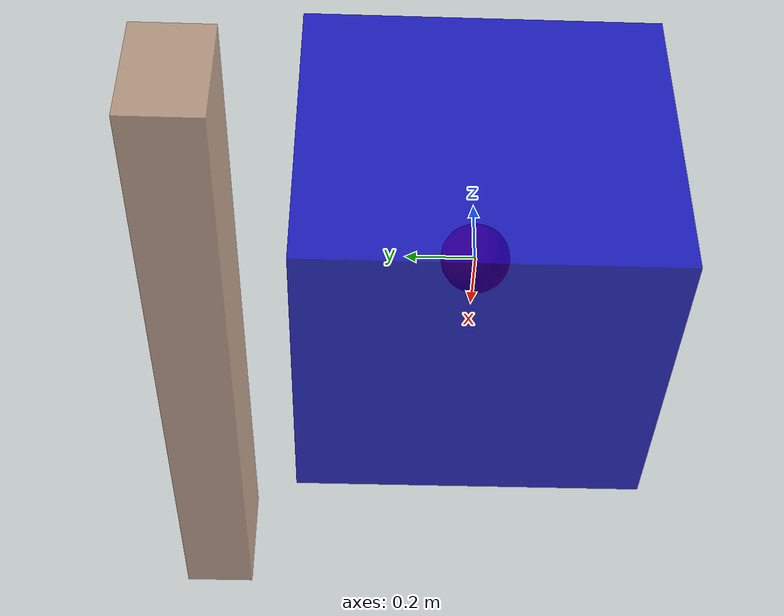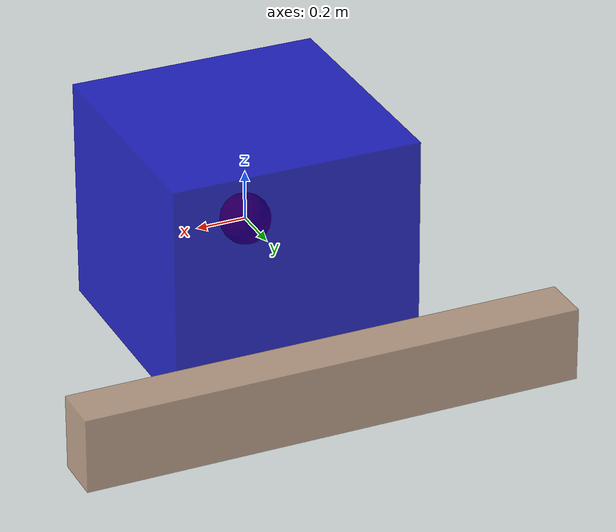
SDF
<?xml version="1.0"?>
<sdf version="1.7">
  <model name="simple_maze">
    <!-- Ghost body of negligible mass. -->
    <link name="sphere_ghost_body">
      <inertial>
        <mass>1.0e-6</mass>
        <inertia>
          <ixx>1.0e-6</ixx>
          <ixy>0</ixy>
          <ixz>0</ixz>
          <iyy>1.0e-6</iyy>
          <iyz>0</iyz>
          <izz>1.0e-6</izz>
        </inertia>
      </inertial>
    </link>
    <!-- The x slider will have an actuator with a corresponding input port
         in our MultibodyPlant model so that we can apply an external force.
    -->
    <joint name="sphere_x_slider" type="prismatic">
      <parent>world</parent>
      <child>sphere_ghost_body</child>
      <axis>
        <xyz>1 0 0</xyz>
      </axis>
    </joint>
    <!-- The y slider allows the box to freely move up and down. Thus, the
         box would free fall if it wasn't for the contact with the ground. -->
    <joint name="sphere_y_slider" type="prismatic">
      <parent>sphere_ghost_body</parent>
      <child>sphere_actuated</child>
      <axis>
        <xyz>0 1 0</xyz>
      </axis>
    </joint>
    <!-- The model for a solid box of uniform density. -->
    <link name="sphere_actuated">
      <inertial>
        <mass>1.0</mass>
        <inertia>
          <ixx>0.004</ixx>
          <ixy>0</ixy>
          <ixz>0</ixz>
          <iyy>0.004</iyy>
          <iyz>0</iyz>
          <izz>0.004</izz>
        </inertia>
      </inertial>
      <visual name="visual">
        <geometry>
          <sphere>
            <radius>0.1</radius>
          </sphere>
        </geometry>
        <material>
          <diffuse>1.0 0 0 1.0</diffuse>
        </material>
      </visual>
      <collision name="collision">
        <geometry>
          <sphere>
            <radius>0.1</radius>
          </sphere>
        </geometry>
        <surface>
          <friction>
            <ode>
              <mu>0.5</mu>
              <mu2>0.5</mu2>
            </ode>
          </friction>
        </surface>
        <drake:proximity_properties>
          <drake:mesh_resolution_hint>0.01</drake:mesh_resolution_hint>
          <drake:rigid_hydroelastic/>
        </drake:proximity_properties>
      </collision>
    </link>

    <!-- The model for a solid box of uniform density. -->
    <link name="box_ghost_body_x">
      <inertial>
        <mass>1.0e-6</mass>
        <inertia>
          <ixx>1.0e-6</ixx>
          <ixy>0</ixy>
          <ixz>0</ixz>
          <iyy>1.0e-6</iyy>
          <iyz>0</iyz>
          <izz>1.0e-6</izz>
        </inertia>
      </inertial>
    </link>

    <link name="box_ghost_body_y">
      <inertial>
        <mass>1.0e-6</mass>
        <inertia>
          <ixx>1.0e-6</ixx>
          <ixy>0</ixy>
          <ixz>0</ixz>
          <iyy>1.0e-6</iyy>
          <iyz>0</iyz>
          <izz>1.0e-6</izz>
        </inertia>
      </inertial>
    </link>

    <joint name="box_x_slider" type="prismatic">
      <parent>world</parent>
      <child>box_ghost_body_x</child>
      <axis>
        <xyz>1 0 0</xyz>
        <!-- Drake attaches an actuator to all joints with a non-zero effort
             limit. We do not want an actuator for this joint. -->
        <limit>
          <effort>0</effort>
        </limit>
      	<dynamics>
      	  <damping>10.0</damping>
      	</dynamics>
      </axis>
    </joint>

    <joint name="y_slider" type="prismatic">
      <parent>box_ghost_body_x</parent>
      <child>box_ghost_body_y</child>
      <axis>
        <xyz>0 1 0</xyz>
        <!-- Drake attaches an actuator to all joints with a non-zero effort
             limit. We do not want an actuator for this joint and therefore we
             set a zero effort limit. -->
        <limit>
          <effort>0</effort>
        </limit>
      	<dynamics>
      	  <damping>10.0</damping>
      	</dynamics>
      </axis>
    </joint>

    <joint name="rotation" type="revolute">
      <parent>box_ghost_body_y</parent>
      <child>box</child>
      <axis>
        <xyz>0 0 1</xyz>
        <!-- Drake attaches an actuator to all joints with a non-zero effort
             limit. We do not want an actuator for this joint and therefore we
             set a zero effort limit. -->
        <limit>
          <effort>0</effort>
        </limit>
      	<dynamics>
      	  <damping>10.0</damping>
      	</dynamics>
      </axis>
    </joint>

    <link name="box">
      <inertial>
        <mass>5.0</mass>
        <inertia>
          <ixx>0.166666666666667</ixx>
          <ixy>0</ixy>
          <ixz>0</ixz>
          <iyy>0.166666666666667</iyy>
          <iyz>0</iyz>
          <izz>0.166666666666667</izz>
        </inertia>
      </inertial>

      <visual name="box_visual">
        <geometry>
          <box>
            <size>0.999 0.999 0.899</size>
          </box>
        </geometry>
        <material>
          <diffuse>0.0 0.0 0.8 0.8</diffuse>
        </material>
      </visual>

      <collision name="sphere_collision">
        <geometry>
          <sphere>
            <radius>0.505</radius>
          </sphere>
        </geometry>
        <drake:proximity_properties>
          <drake:compliant_hydroelastic/>
          <drake:mesh_resolution_hint>0.1</drake:mesh_resolution_hint>
          <drake:hydroelastic_modulus>5e6</drake:hydroelastic_modulus>
          <drake:hunt_crossley_dissipation>3.0</drake:hunt_crossley_dissipation>
        </drake:proximity_properties>
      </collision>

      <collision name="box_collision">
        <geometry>
          <box>
            <size>0.99 0.999 1.0</size>
          </box>
        </geometry>
        <drake:proximity_properties>
          <drake:compliant_hydroelastic/>
          <drake:mesh_resolution_hint>0.1</drake:mesh_resolution_hint>
          <drake:hydroelastic_modulus>5e6</drake:hydroelastic_modulus>
          <drake:hunt_crossley_dissipation>3.0</drake:hunt_crossley_dissipation>
        </drake:proximity_properties>
      </collision>
    </link>

    <link name="wall">
    <visual name='visual'>
      <pose> 0 0.75 -0.35 0 0 0 </pose>
      <geometry>
        <box>
         <size>2.0 0.2 0.3</size>
        </box>
      </geometry>
      <material>
        <diffuse>0.75 0.6 0.5 0.8</diffuse>
      </material>
    </visual>

    <collision name='collision'>
      <pose> 0 0.75 -0.35 0 0 0 </pose>
      <geometry>
        <box>
         <size>2.0 0.2 0.3</size>
        </box>
      </geometry>
      <surface>
        <friction>
        <ode>
          <mu>0.5</mu>
          <mu2>0.5</mu2>
        </ode>
        </friction>
      </surface>
      <drake:proximity_properties>
        <drake:mesh_resolution_hint>0.1</drake:mesh_resolution_hint>
        <drake:rigid_hydroelastic/>
      </drake:proximity_properties>
    </collision>

    </link>
    <joint name="world_to_wall" type="fixed">
      <parent>world</parent>
      <child>wall</child>
      <axis>
        <xyz>1 0 0</xyz>
      </axis>
    </joint>
  </model>
</sdf>
